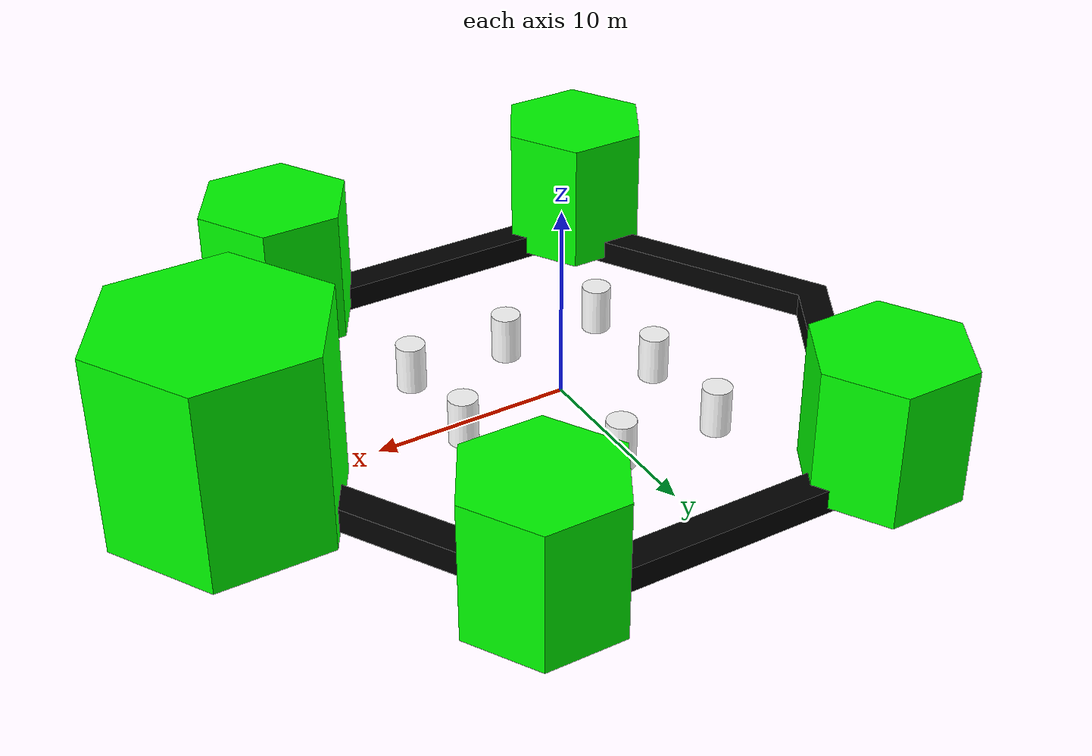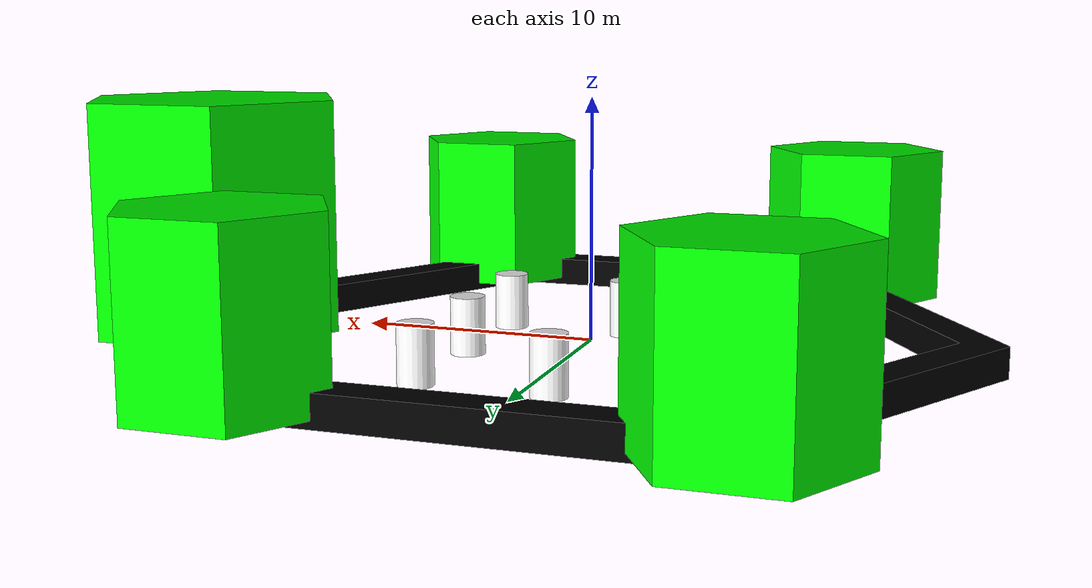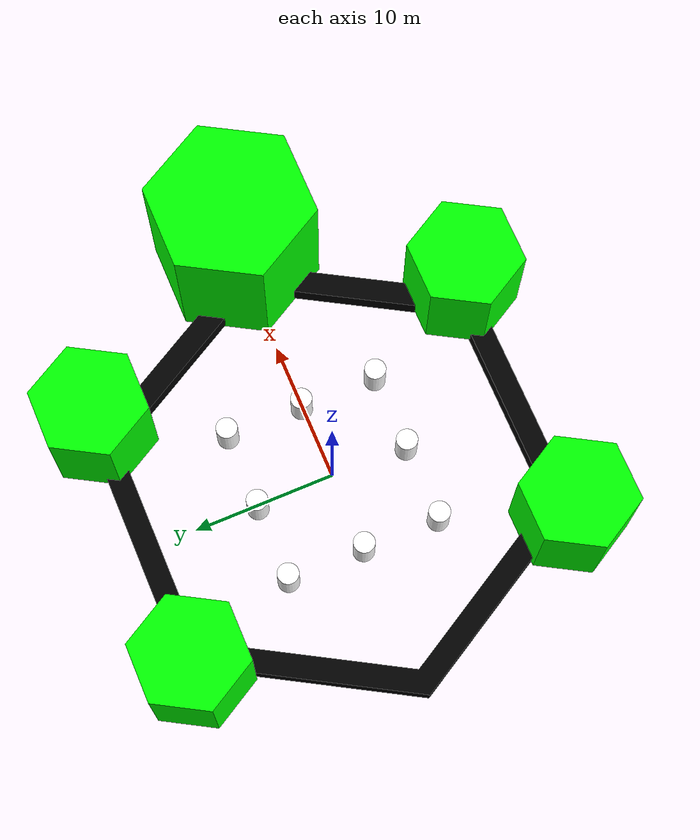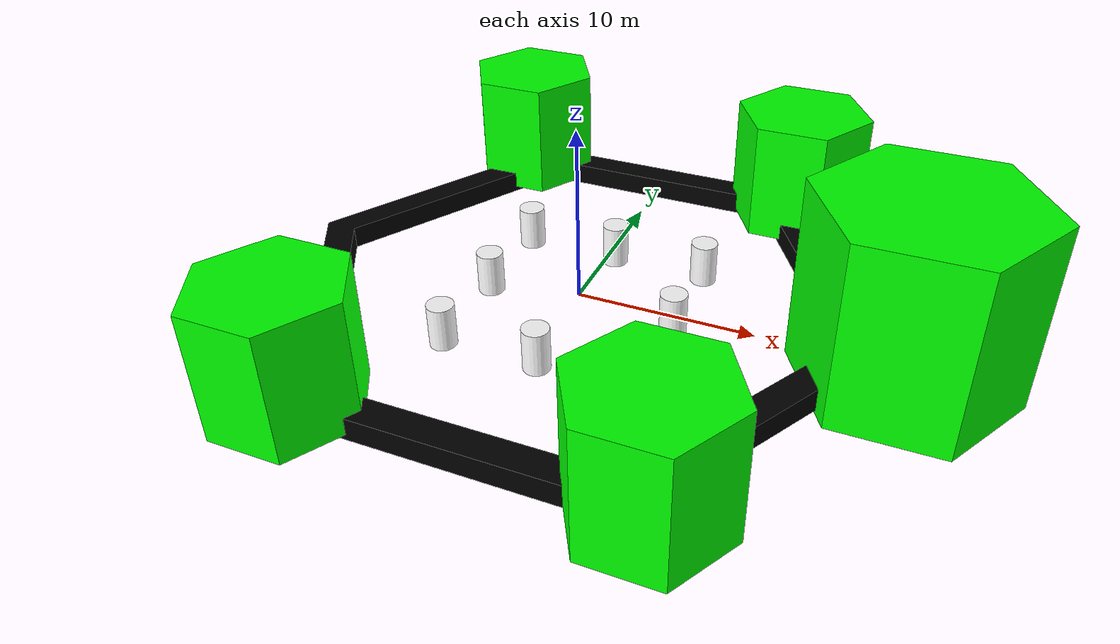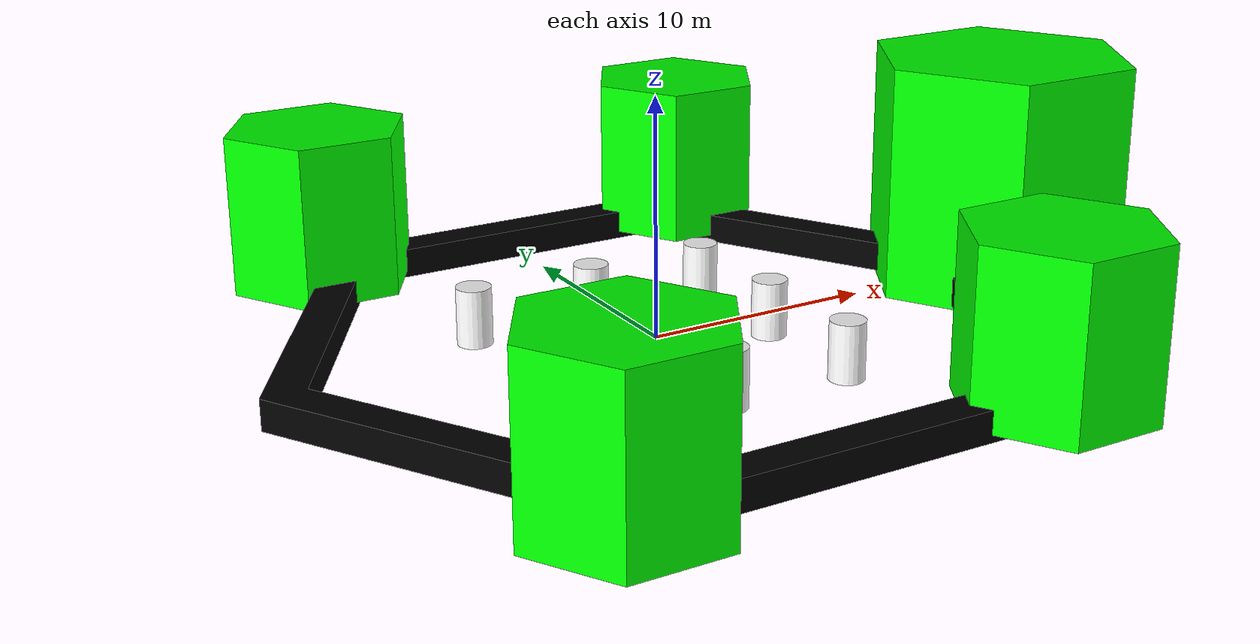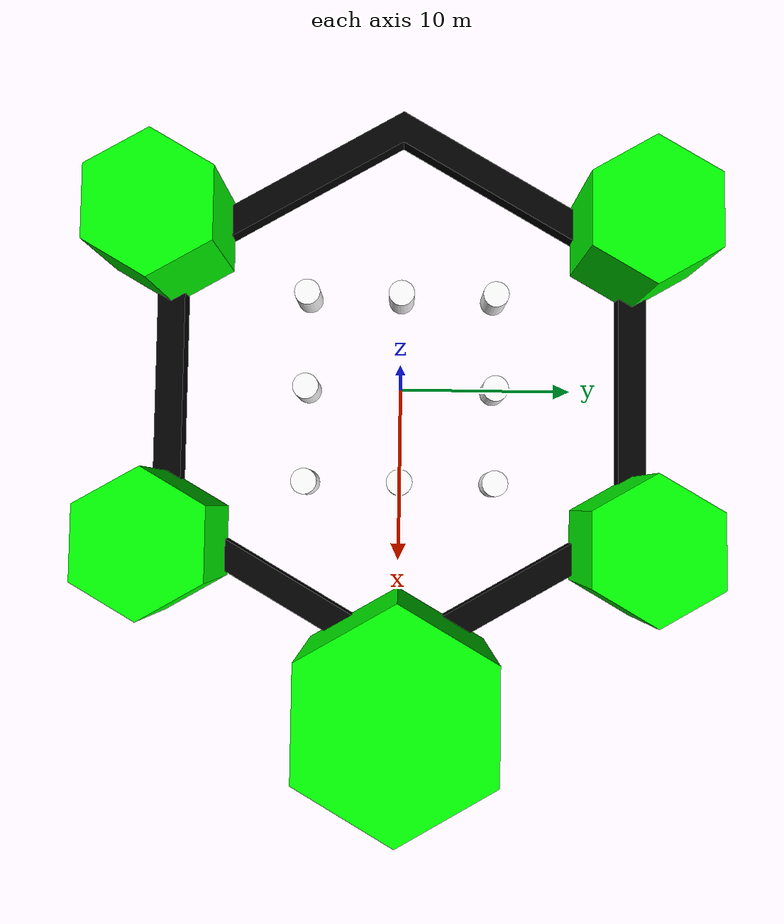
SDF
<?xml version="1.0" ?>
<sdf version="1.5">
    <model name='ros_symbol'>
      <static>1</static>
      <link name='symbol'>
        <collision name='one_one'>
          <pose>-5.5 -5.5 0.25 0 0 0</pose>
          <geometry>
            <cylinder>
              <radius>0.75</radius>
              <length>2.5</length>
            </cylinder>
          </geometry>
          <max_contacts>10</max_contacts>
          <surface>
            <bounce/>
            <friction>
              <ode/>
            </friction>
            <contact>
              <ode/>
            </contact>
          </surface>
        </collision>

        <visual name='one_one'>
          <pose>-5.5 -5.5 0.25 0 0 0</pose>
          <geometry>
            <cylinder>
              <radius>0.75</radius>
              <length>2.5</length>
            </cylinder>
          </geometry>
          <material>
            <ambient>1 1 1 1</ambient>
            <diffuse>1 1 1 1</diffuse>
            <specular>0.2 0.2 0.2 1</specular>
            <emissive>0 0 0 1</emissive>
          </material>
        </visual>

        <collision name='one_two'>
          <pose>-5.5 0 0.25 0 0 0</pose>
          <geometry>
            <cylinder>
              <radius>0.75</radius>
              <length>2.5</length>
            </cylinder>
          </geometry>
          <max_contacts>10</max_contacts>
          <surface>
            <bounce/>
            <friction>
              <ode/>
            </friction>
            <contact>
              <ode/>
            </contact>
          </surface>
        </collision>

        <visual name='one_two'>
          <pose>-5.5 0 0.25 0 0 0</pose>
          <geometry>
            <cylinder>
              <radius>0.75</radius>
              <length>2.5</length>
            </cylinder>
          </geometry>
          <material>
            <ambient>1 1 1 1</ambient>
            <diffuse>1 1 1 1</diffuse>
            <specular>0.2 0.2 0.2 1</specular>
            <emissive>0 0 0 1</emissive>
          </material>
        </visual>

        <collision name='one_three'>
          <pose>-5.5 5.5 0.25 0 0 0</pose>
          <geometry>
            <cylinder>
              <radius>0.75</radius>
              <length>2.5</length>
            </cylinder>
          </geometry>
          <max_contacts>10</max_contacts>
          <surface>
            <bounce/>
            <friction>
              <ode/>
            </friction>
            <contact>
              <ode/>
            </contact>
          </surface>
        </collision>

        <visual name='one_three'>
          <pose>-5.5 5.5 0.25 0 0 0</pose>
          <geometry>
            <cylinder>
              <radius>0.75</radius>
              <length>2.5</length>
            </cylinder>
          </geometry>
          <material>
            <ambient>1 1 1 1</ambient>
            <diffuse>1 1 1 1</diffuse>
            <specular>0.2 0.2 0.2 1</specular>
            <emissive>0 0 0 1</emissive>
          </material>
        </visual>

        <collision name='two_one'>
          <pose>0 -5.5 0.25 0 0 0</pose>
          <geometry>
            <cylinder>
              <radius>0.75</radius>
              <length>2.5</length>
            </cylinder>
          </geometry>
          <max_contacts>10</max_contacts>
          <surface>
            <bounce/>
            <friction>
              <ode/>
            </friction>
            <contact>
              <ode/>
            </contact>
          </surface>
        </collision>

        <visual name='two_one'>
          <pose>0 -5.5 0.25 0 0 0</pose>
          <geometry>
            <cylinder>
              <radius>0.75</radius>
              <length>2.5</length>
            </cylinder>
          </geometry>
          <material>
            <ambient>1 1 1 1</ambient>
            <diffuse>1 1 1 1</diffuse>
            <specular>0.2 0.2 0.2 1</specular>
            <emissive>0 0 0 1</emissive>
          </material>
        </visual>

        <collision name='two_three'>
          <pose>0 5.5 0.25 0 0 0</pose>
          <geometry>
            <cylinder>
              <radius>0.75</radius>
              <length>2.5</length>
            </cylinder>
          </geometry>
          <max_contacts>10</max_contacts>
          <surface>
            <bounce/>
            <friction>
              <ode/>
            </friction>
            <contact>
              <ode/>
            </contact>
          </surface>
        </collision>

        <visual name='two_three'>
          <pose>0 5.5 0.25 0 0 0</pose>
          <geometry>
            <cylinder>
              <radius>0.75</radius>
              <length>2.5</length>
            </cylinder>
          </geometry>
          <material>
            <ambient>1 1 1 1</ambient>
            <diffuse>1 1 1 1</diffuse>
            <specular>0.2 0.2 0.2 1</specular>
            <emissive>0 0 0 1</emissive>
          </material>
        </visual>

        <collision name='three_one'>
          <pose>5.5 -5.5 0.25 0 0 0</pose>
          <geometry>
            <cylinder>
              <radius>0.75</radius>
              <length>2.5</length>
            </cylinder>
          </geometry>
          <max_contacts>10</max_contacts>
          <surface>
            <bounce/>
            <friction>
              <ode/>
            </friction>
            <contact>
              <ode/>
            </contact>
          </surface>
        </collision>

        <visual name='three_one'>
          <pose>5.5 -5.5 0.25 0 0 0</pose>
          <geometry>
            <cylinder>
              <radius>0.75</radius>
              <length>2.5</length>
            </cylinder>
          </geometry>
          <material>
            <ambient>1 1 1 1</ambient>
            <diffuse>1 1 1 1</diffuse>
            <specular>0.2 0.2 0.2 1</specular>
            <emissive>0 0 0 1</emissive>
          </material>
        </visual>

        <collision name='three_two'>
          <pose>5.5 0 0.25 0 0 0</pose>
          <geometry>
            <cylinder>
              <radius>0.75</radius>
              <length>2.5</length>
            </cylinder>
          </geometry>
          <max_contacts>10</max_contacts>
          <surface>
            <bounce/>
            <friction>
              <ode/>
            </friction>
            <contact>
              <ode/>
            </contact>
          </surface>
        </collision>

        <visual name='three_two'>
          <pose>5.5 0 0.25 0 0 0</pose>
          <geometry>
            <cylinder>
              <radius>0.75</radius>
              <length>2.5</length>
            </cylinder>
          </geometry>
          <material>
            <ambient>1 1 1 1</ambient>
            <diffuse>1 1 1 1</diffuse>
            <specular>0.2 0.2 0.2 1</specular>
            <emissive>0 0 0 1</emissive>
          </material>
        </visual>

        <collision name='three_three'>
          <pose>5.5 5.5 0.25 0 0 0</pose>
          <geometry>
            <cylinder>
              <radius>0.75</radius>
              <length>2.5</length>
            </cylinder>
          </geometry>
          <max_contacts>10</max_contacts>
          <surface>
            <bounce/>
            <friction>
              <ode/>
            </friction>
            <contact>
              <ode/>
            </contact>
          </surface>
        </collision>

        <visual name='three_three'>
          <pose>5.5 5.5 0.25 0 0 0</pose>
          <geometry>
            <cylinder>
              <radius>0.75</radius>
              <length>2.5</length>
            </cylinder>
          </geometry>
          <material>
            <ambient>1 1 1 1</ambient>
            <diffuse>1 1 1 1</diffuse>
            <specular>0.2 0.2 0.2 1</specular>
            <emissive>0 0 0 1</emissive>
          </material>
        </visual>

        <!-- Draw Hexagon -->
        <collision name='head'>
          <pose>17.5 0 -0.5 0 0 0</pose>
          <geometry>
            <mesh>
              <uri>model://turtlebot3_world/meshes/hexagon.dae</uri>
              <scale>4.0 4.0 4.0</scale>
            </mesh>
          </geometry>
          <max_contacts>10</max_contacts>
          <surface>
            <bounce/>
            <friction>
              <ode/>
            </friction>
            <contact>
              <ode/>
            </contact>
          </surface>
        </collision>

        <visual name='head'>
          <pose>17.5 0 -0.5 0 0 0</pose>
          <geometry>
            <mesh>
              <uri>model://turtlebot3_world/meshes/hexagon.dae</uri>
              <scale>4.0 4.0 4.0</scale>
            </mesh>
          </geometry>
          <material>
            <ambient>0 1 0 1</ambient>
            <diffuse>0 1 0 1</diffuse>
            <specular>0.2 0.2 0.2 1</specular>
            <emissive>0 0 0 1</emissive>
          </material>
        </visual>

        <collision name='left_hand'>
          <pose>9.0 13.5 0 0 0 0</pose>
          <geometry>
            <mesh>
              <uri>model://turtlebot3_world/meshes/hexagon.dae</uri>
              <scale>2.75 2.75 2.75</scale>
            </mesh>
          </geometry>
          <max_contacts>10</max_contacts>
          <surface>
            <bounce/>
            <friction>
              <ode/>
            </friction>
            <contact>
              <ode/>
            </contact>
          </surface>
        </collision>

        <visual name='left_hand'>
          <pose>9.0 13.5 0 0 0 0</pose>
          <geometry>
            <mesh>
              <uri>model://turtlebot3_world/meshes/hexagon.dae</uri>
              <scale>2.75 2.75 2.75</scale>
            </mesh>
          </geometry>
          <material>
            <ambient>0 1 0 1</ambient>
            <diffuse>0 1 0 1</diffuse>
            <specular>0.2 0.2 0.2 1</specular>
            <emissive>0 0 0 1</emissive>
          </material>
        </visual>

        <collision name='right_hand'>
          <pose>9.0 -13.5 0 0 0 0</pose>
          <geometry>
            <mesh>
              <uri>model://turtlebot3_world/meshes/hexagon.dae</uri>
              <scale>2.75 2.75 2.75</scale>
            </mesh>
          </geometry>
          <max_contacts>10</max_contacts>
          <surface>
            <bounce/>
            <friction>
              <ode/>
            </friction>
            <contact>
              <ode/>
            </contact>
          </surface>
        </collision>

        <visual name='right_hand'>
          <pose>9.0 -13.5 0 0 0 0</pose>
          <geometry>
            <mesh>
              <uri>model://turtlebot3_world/meshes/hexagon.dae</uri>
              <scale>2.75 2.75 2.75</scale>
            </mesh>
          </geometry>
          <material>
            <ambient>0 1 0 1</ambient>
            <diffuse>0 1 0 1</diffuse>
            <specular>0.2 0.2 0.2 1</specular>
            <emissive>0 0 0 1</emissive>
          </material>
        </visual>

        <collision name='left_foot'>
          <pose>-9.0 13.5 0 0 0 0</pose>
          <geometry>
            <mesh>
              <uri>model://turtlebot3_world/meshes/hexagon.dae</uri>
              <scale>2.75 2.75 2.75</scale>
            </mesh>
          </geometry>
          <max_contacts>10</max_contacts>
          <surface>
            <bounce/>
            <friction>
              <ode/>
            </friction>
            <contact>
              <ode/>
            </contact>
          </surface>
        </collision>

        <visual name='left_foot'>
          <pose>-9.0 13.5 0 0 0 0</pose>
          <geometry>
            <mesh>
              <uri>model://turtlebot3_world/meshes/hexagon.dae</uri>
              <scale>2.75 2.75 2.75</scale>
            </mesh>
          </geometry>
          <material>
            <ambient>0 1 0 1</ambient>
            <diffuse>0 1 0 1</diffuse>
            <specular>0.2 0.2 0.2 1</specular>
            <emissive>0 0 0 1</emissive>
          </material>
        </visual>

        <collision name='right_foot'>
          <pose>-9.0 -13.5 0 0 0 0</pose>
          <geometry>
            <mesh>
              <uri>model://turtlebot3_world/meshes/hexagon.dae</uri>
              <scale>2.75 2.75 2.75</scale>
            </mesh>
          </geometry>
          <max_contacts>10</max_contacts>
          <surface>
            <bounce/>
            <friction>
              <ode/>
            </friction>
            <contact>
              <ode/>
            </contact>
          </surface>
        </collision>

        <visual name='right_foot'>
          <pose>-9.0 -13.5 0 0 0 0</pose>
          <geometry>
            <mesh>
              <uri>model://turtlebot3_world/meshes/hexagon.dae</uri>
              <scale>2.75 2.75 2.75</scale>
            </mesh>
          </geometry>
          <material>
            <ambient>0 1 0 1</ambient>
            <diffuse>0 1 0 1</diffuse>
            <specular>0.2 0.2 0.2 1</specular>
            <emissive>0 0 0 1</emissive>
          </material>
        </visual>

        <!-- Draw Wall -->
        <collision name='body'>
        <pose>0 0 -0.3 0 0 -1.5708</pose>
        <geometry>
          <mesh>
            <uri>model://turtlebot3_world/meshes/wall.dae</uri>
            <scale>1.25 1.25 0.25</scale>
          </mesh>
        </geometry>
        <max_contacts>10</max_contacts>
        <surface>
          <bounce/>
          <friction>
            <ode/>
          </friction>
          <contact>
            <ode/>
          </contact>
        </surface>
      </collision>

      <visual name='body'>
        <pose>0 0 -0.3 0 0 -1.5708</pose>
        <geometry>
          <mesh>
            <uri>model://turtlebot3_world/meshes/wall.dae</uri>
            <scale>1.25 1.25 0.25</scale>
          </mesh>
        </geometry>
        <material>
          <ambient>0 0 0 1</ambient>
          <diffuse>0 0 0 1</diffuse>
          <specular>0 0 0 1</specular>
          <emissive>0 0 0 1</emissive>
        </material>
      </visual>
    </link>
  </model>
</sdf>
